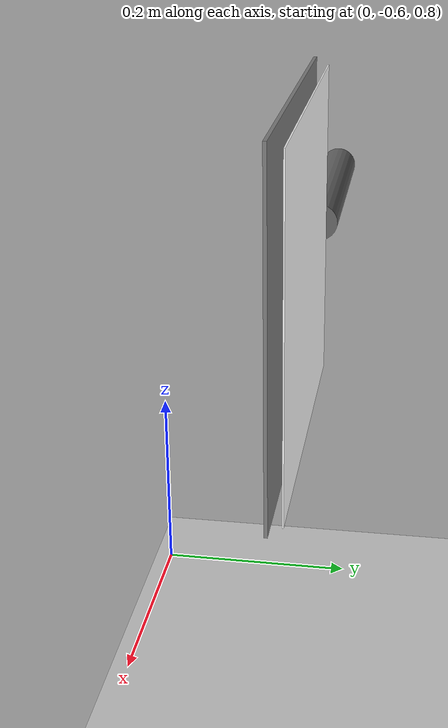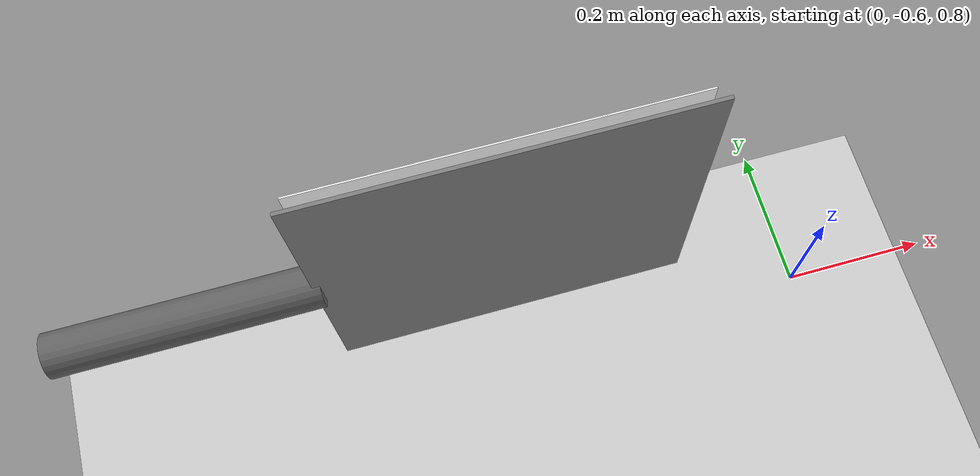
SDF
<?xml version="1.0" ?>
<sdf version="1.5">
  <world name="leonardo_race_field">
        <!-- A ground plane -->
    <include>
      <uri>model://ground_plane</uri>
    </include>
    <include>
      <uri>model://asphalt_plane</uri>
    </include>
    <physics name='default_physics' default='0' type='ode'>
      <gravity>0 0 -9.8066</gravity>
      <ode>
        <solver>
          <type>quick</type>
          <iters>10</iters>
          <sor>1.3</sor>
          <use_dynamic_moi_rescaling>0</use_dynamic_moi_rescaling>
        </solver>
        <constraints>
          <cfm>0</cfm>
          <erp>0.2</erp>
          <contact_max_correcting_vel>100</contact_max_correcting_vel>
          <contact_surface_layer>0.001</contact_surface_layer>
        </constraints>
      </ode>
      <max_step_size>0.004</max_step_size>
      <real_time_factor>1</real_time_factor>
      <real_time_update_rate>250</real_time_update_rate>
      <magnetic_field>6.0e-6 2.3e-5 -4.2e-5</magnetic_field>
    </physics>

    <include>
      <uri>model://sun</uri>
    </include>
    <!-- AR markers -->
    <include>
      <name>tool_0_tag</name>
      <uri>model://marker_0</uri>
      <pose>-1 -0.5 1 0 1.57 0</pose>
    </include>

  </world>
</sdf>

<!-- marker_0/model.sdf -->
<sdf version="1.6">
  <model name="aruco_marker_0">
    <static>true</static>
    <link name="link">
      <!-- Support pole: top reaches the panel's lower edge (0.35 m), no overlap -->
      <visual name="pole">
        <pose>0 0 0.175 0 0 0</pose>
        <geometry><cylinder><radius>0.03</radius><length>0.35</length></cylinder></geometry>
        <material>
          <ambient>0.3 0.3 0.3 1</ambient>
          <diffuse>0.4 0.4 0.4 1</diffuse>
          <specular>0.1 0.1 0.1 1</specular>
        </material>
      </visual>
      <collision name="pole_col">
        <pose>0 0 0.175 0 0 0</pose>
        <geometry><cylinder><radius>0.03</radius><length>0.35</length></cylinder></geometry>
      </collision>
      <!-- Marker panel 0.50 m, center 0.6 m high; lower edge at 0.35 m -->
      <!-- Local +Y face carries the texture; world yaw aims it inward. -->
      <visual name="marker">
        <pose>0 0.011 0.6 1.5708 0 0</pose>
        <geometry><box><size>0.50 0.50 0.002</size></box></geometry>
        <material>
          <ambient>1.0 1.0 1.0 1</ambient>
          <diffuse>1.0 1.0 1.0 1</diffuse>
          <specular>0.0 0.0 0.0 1</specular>
          <pbr>
            <metal>
              <albedo_map>model://aruco/marker_0/materials/textures/marker_0.png</albedo_map>
              <metalness>0.0</metalness>
              <roughness>1.0</roughness>
            </metal>
          </pbr>
        </material>
      </visual>
      <collision name="marker_col">
        <pose>0 0 0.6 0 0 0</pose>
        <geometry><box><size>0.50 0.04 0.52</size></box></geometry>
      </collision>
      <!-- Opaque gray backing on the local -Y side: occludes the texture from
           behind so a camera facing the back cannot detect a mirrored (flipped) marker. -->
      <visual name="back_panel">
        <pose>0 -0.01 0.6 1.5708 0 0</pose>
        <geometry><box><size>0.52 0.52 0.005</size></box></geometry>
        <material>
          <ambient>0.5 0.5 0.5 1</ambient>
          <diffuse>0.5 0.5 0.5 1</diffuse>
          <specular>0.1 0.1 0.1 1</specular>
        </material>
      </visual>
    </link>
  </model>
</sdf>
